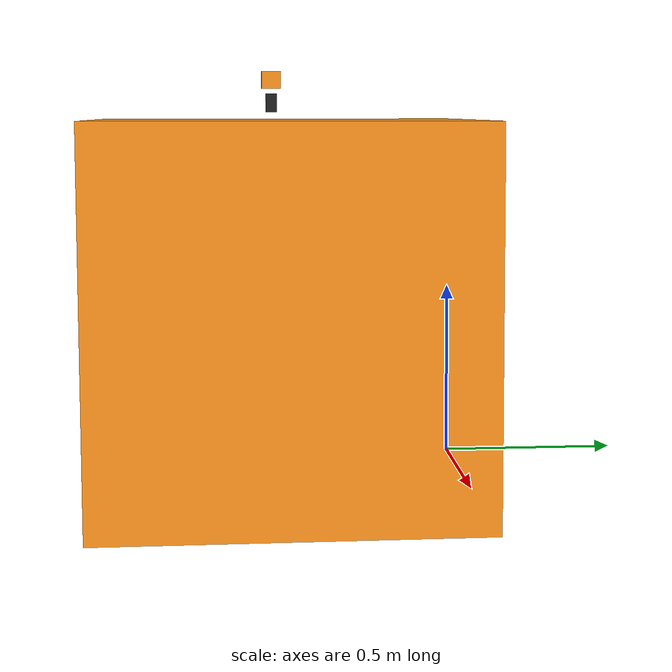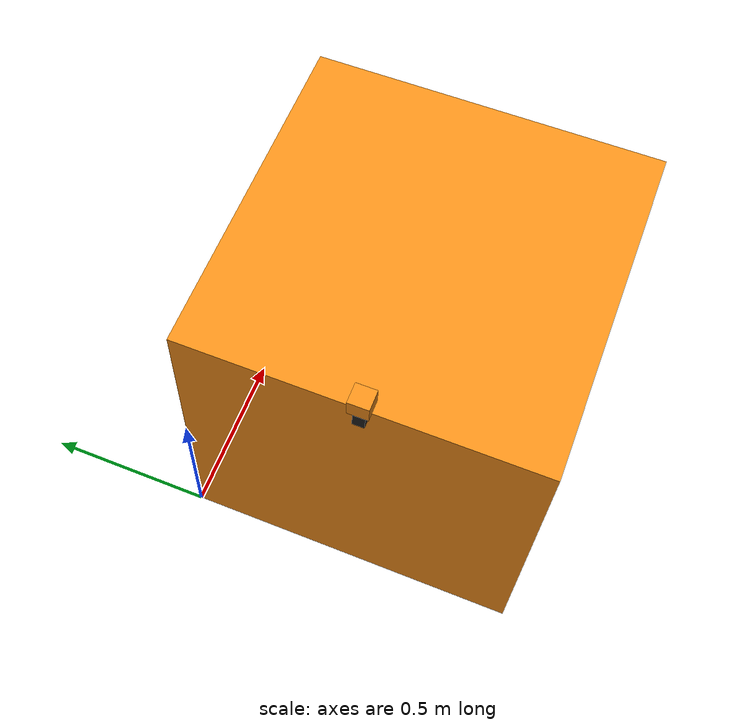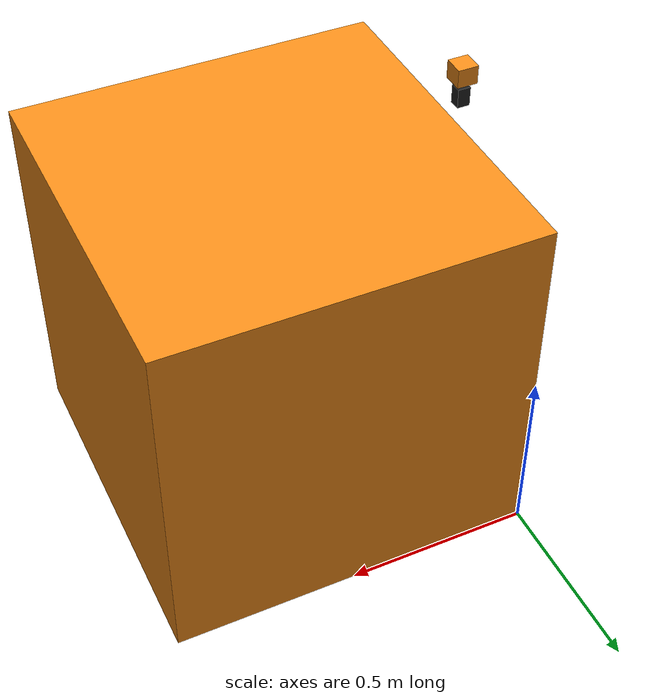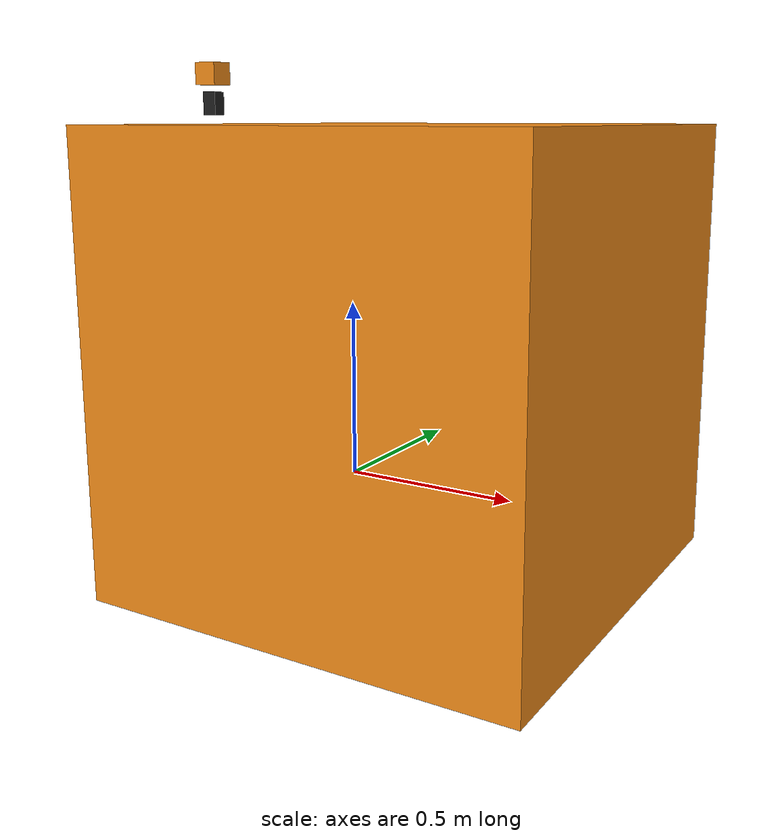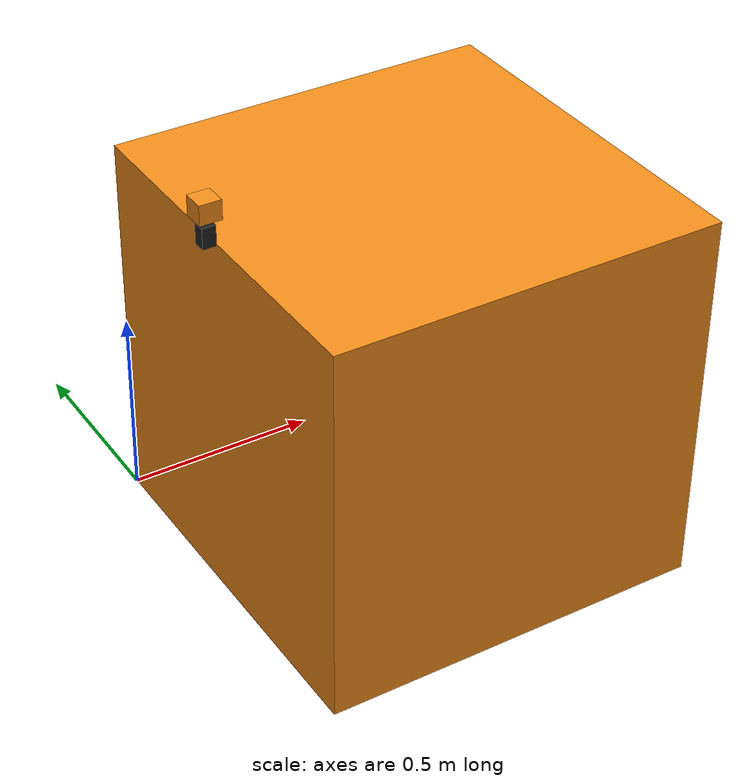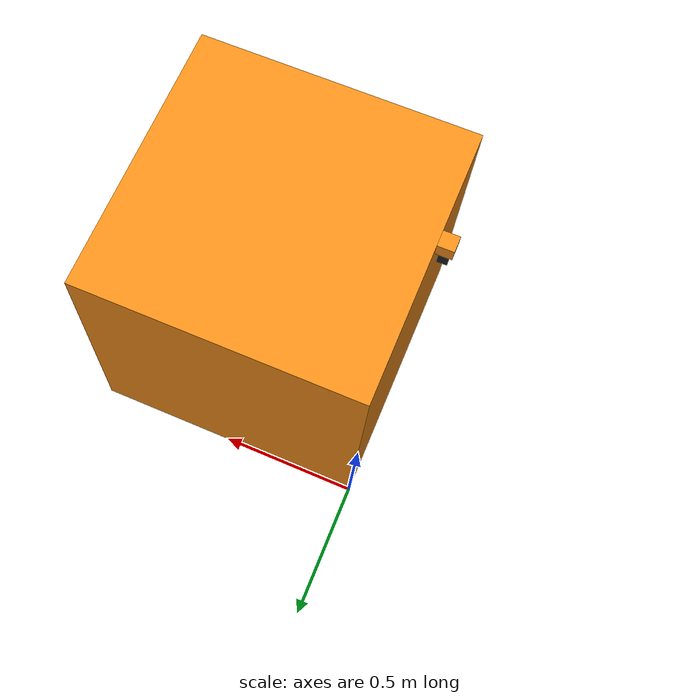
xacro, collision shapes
<?xml version="1.0"?>
<!-- Revolute-Revolute Manipulator -->
<robot name="lidar" xmlns:xacro="http://www.ros.org/wiki/xacro">

  <!-- Constants for robot dimensions -->
  <xacro:property name="PI" value="3.1415926535897931"/>
  <xacro:property name="mass" value="3.527" /> <!-- arbitrary value for mass -->
  <xacro:property name="width" value="1" /> <!-- Square dimensions (widthxwidth) of beams -->
  <xacro:property name="height1" value="1" /> <!-- Link 1 -->
  <xacro:property name="mass2" value="0.048386" />
  <xacro:property name="width2" value="0.05" />
  <xacro:property name="length2" value="0.05" />
  <xacro:property name="height2" value="0.05" /> <!-- Link 2 -->
  <xacro:property name="mass3" value="1" />
  <xacro:property name="width3" value="0.056" />
  <xacro:property name="length3" value="0.056" />
  <xacro:property name="height3" value="0.051" /> <!-- Link 3 -->

  <!-- Import all Gazebo-customization elements, including Gazebo colors -->
  <xacro:include filename="$(find lidar_description)/urdf/lidar.gazebo" />
  <!-- Import Rviz colors -->
  <xacro:include filename="$(find lidar_description)/urdf/materials.xacro" />

  <!-- Used for fixing robot to Gazebo 'base_link' -->
  <link name="world"/>

  <joint name="fixed" type="fixed">
    <parent link="world"/>
    <child link="link1"/>
  </joint>

  <!-- Base Link -->
  <link name="link1">
    <collision>
      <origin xyz="${width/2} ${-width/2} ${height1/2}" rpy="0 0 0"/>
      <geometry>
	      <box size="${width} ${width} ${height1}"/>
      </geometry>
    </collision>

    <visual>
      <origin xyz="0 0 0" rpy="0 0 0"/>
      <geometry>
        <mesh filename="package://lidar_description/meshes/estructura.dae"/>
      </geometry>
      <material name="orange"/>
    </visual>

    <inertial>
      <origin xyz="${width/2} ${-width/2} ${height1/2}" rpy="0 0 0"/>
      <mass value="${mass}"/>
      <inertia
	      ixx="1.068" iyy="1.068" izz="1.418" ixy="0.0" ixz="0.0" iyz="0.0"/>
    </inertial>

  </link>

  <joint name="joint1" type="continuous">
    <parent link="link1"/>
    <child link="link2"/>
    <origin xyz="-0.0345 ${-width/2 - 0.0225} ${1.021}" rpy="0 0 0"/>
    <axis xyz="0 0 1"/>
    <dynamics damping="0.7"/>
  </joint>

  <!-- Middle Link -->
  <link name="link2">
    <collision>
      <origin xyz="0 0 ${height2/2}" rpy="0 0 0"/>
      <geometry>
        <box size="0.0345 0.032 0.053"/>
      </geometry>
    </collision>

    <visual>
      <origin xyz="0.0345 ${width/2 + 0.0225} ${-1.021}" rpy="0 0 0"/>
      <geometry>
        <mesh filename="package://lidar_description/meshes/Motor.dae"/>
      </geometry>
      <material name="black"/>
    </visual>

    <inertial>
      <origin xyz="0 0 ${height2/2}" rpy="0 0 0"/>
      <mass value="${mass2}"/>
      <inertia
      ixx="0.000013" iyy="0.000016" izz="0.000008" ixy="0.0" ixz="0.0" iyz="0.0"/>
    </inertial>
  </link>

  <joint name="joint2" type="revolute">
    <parent link="link2"/>
    <child link="link3"/>
    <origin xyz="0 0 ${0.0415}" rpy="0 0 0"/>
    <axis xyz="1 0 0"/>
    <limit effort="30" velocity="1.0" lower="-1.57" upper="1.57" />
    <dynamics damping="0.7"/>
  </joint>

  <!-- Top Link -->
  <link name="link3">
    <collision>
      <origin xyz="0 0 ${height3}" rpy="0 0 0"/>
      <geometry>
        <box size="0.056 0.056 0.051"/>
      </geometry>
    </collision>

    <visual>
      <origin xyz="0.0345 ${width/2 + 0.0225} ${-1.0625}" rpy="0 0 0"/>
      <geometry>
      <mesh filename="package://lidar_description/meshes/Sensor.dae"/>
      </geometry>
      <material name="orange"/>
    </visual>

    <inertial>
      <origin xyz="0 0 ${height3}" rpy="0 0 0"/>
      <mass value="${mass3}"/>
      <inertia
	  ixx="${mass3 / 12.0 * (width3*width3 + height3*height3)}" ixy="0.0" ixz="0.0"
	  iyy="${mass3 / 12.0 * (height3*height3 + length3*length3)}" iyz="0.0"
	  izz="${mass3 / 12.0 * (length3*length3 + width3*width3)}"/>
    </inertial>
  </link>

  <transmission name="tran1">
    <type>transmission_interface/SimpleTransmission</type>
    <joint name="joint1">
      <hardwareInterface>hardware_interface/EffortJointInterface</hardwareInterface>
    </joint>
    <actuator name="motor1">
      <hardwareInterface>hardware_interface/EffortJointInterface</hardwareInterface>
      <mechanicalReduction>1</mechanicalReduction>
    </actuator>
  </transmission>

  <transmission name="tran2">
    <type>transmission_interface/SimpleTransmission</type>
    <joint name="joint2">
      <hardwareInterface>hardware_interface/EffortJointInterface</hardwareInterface>
    </joint>
    <actuator name="motor2">
      <hardwareInterface>hardware_interface/EffortJointInterface</hardwareInterface>
      <mechanicalReduction>1</mechanicalReduction>
    </actuator>
  </transmission>

</robot>
